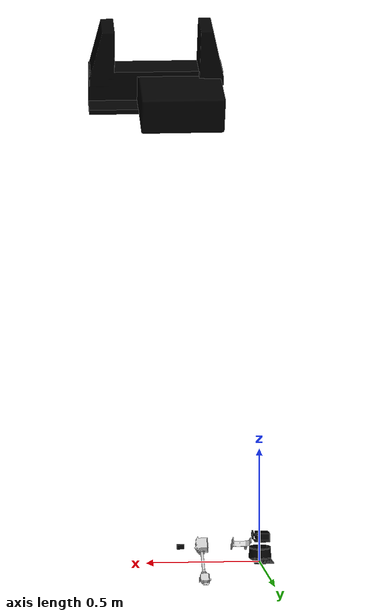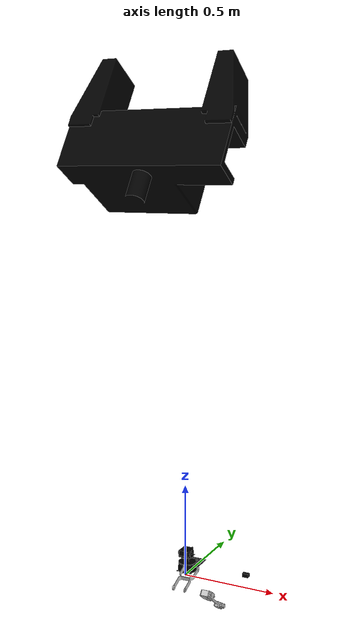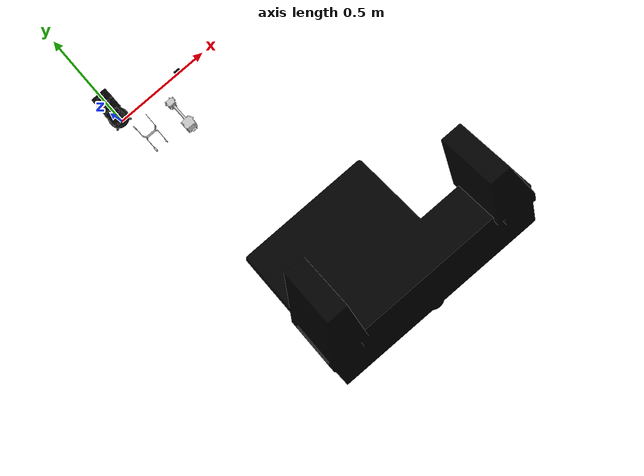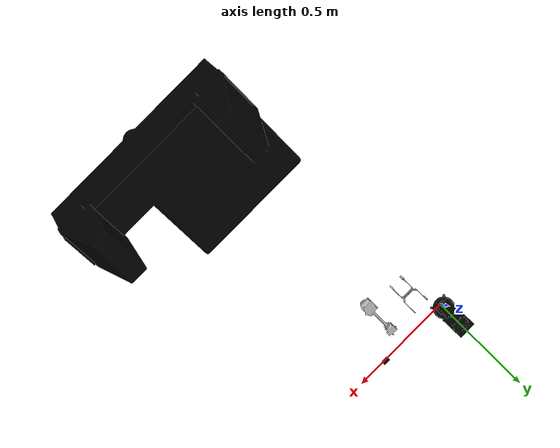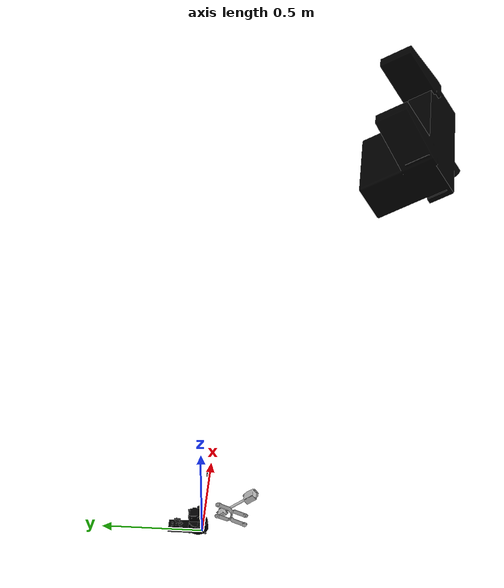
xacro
<?xml version="1.0" ?>
<robot name="lynxmotion_al5d" xmlns:xacro="http://ros.org/wiki/xacro">
  <xacro:include filename="$(find lynxmotion_al5d_support)/urdf/al5d_macro.xacro"/>
    <xacro:lynxmotion_al5d prefix=""/>
    <link name="world"/>
    <joint name="fixed" type="fixed">
      <parent link="world"/>
      <child link="base_link"/>
    </joint>
</robot>

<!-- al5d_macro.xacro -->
<robot xmlns:xacro="http://ros.org/wiki/xacro">

  <xacro:property name="M_PI" value="3.14159"/>

 <xacro:property  name="base_height" value="0.043" />
 <xacro:property  name="base_radius" value="0.048" />
 <xacro:property name="link1_height" value="0.006" />
 <xacro:property name="link1_radius" value="0.048" />
 <xacro:property  name="link2_offset" value="0.022" />
  <xacro:property name="link2_length" value="0.14605" />
  <xacro:property name="link3_length" value="0.187325" />
  <xacro:property  name="link4_length" value="0.032" />
 <xacro:property  name="gripper_offset" value="0.016" />

  <xacro:macro name="lynxmotion_al5d" params="prefix">
    <!-- attach -->

    <!-- links -->
    <link name="${prefix}base_link">
      <visual>
        <origin xyz="0 0 ${base_height/2}" rpy="0 0 0"/>
       <geometry>
					<mesh filename="package://lynxmotion_al5d_support/meshes/base_1.dae"/>
				</geometry>
        <material name="black">
          <color rgba="0 0 0 1"/>
        </material>
      </visual>
      <collision>
        <origin xyz="0 0 ${base_height/2}" rpy="0 0 0"/>
        <geometry>
          <cylinder length="${base_height}" radius="${link1_radius}"/>
        </geometry>
      </collision>
    </link>
    <link name="${prefix}link_1">
      <visual>
        <origin xyz="0 0 0" rpy="0 0 0"/>
       <geometry>
					<mesh filename="package://lynxmotion_al5d_support/meshes/link_11.dae"/>
				</geometry>
        <material name="black">
          <color rgba="0 0 0 1"/>
        </material>
      </visual>
      <collision>
        <origin xyz="0 0 0" rpy="0 0 0"/>
        <geometry>
           <cylinder length="${link1_height}" radius="${base_radius}"/>
        </geometry>
      </collision>
    </link>
    <link name="${prefix}link_2">
      <visual>
        <origin xyz="${link2_length/2} 0 0" rpy="0 0 0"/>
              <geometry>
					<mesh filename="package://lynxmotion_al5d_support/meshes/link_2.dae"/>
				</geometry>
        <material name="silver">
          <color rgba="0.8 0.8 0.8 1"/>
        </material>
      </visual>
      <collision>
        <origin xyz="${link2_length/2} 0 0" rpy="0 0 0"/>
        <geometry>
          <box size="${link2_length-0.02} 0.02 .02"/>
        </geometry>
      </collision>
    </link>
    <link name="${prefix}link_3">
      <visual>
        <origin xyz="${link3_length/2} 0 0" rpy="0 0 0"/>
       <geometry>
					<mesh filename="package://lynxmotion_al5d_support/meshes/link_3.dae"/>
				</geometry>
        <material name="silver">
          <color rgba="0.8 0.8 0.8 1"/>
        </material>
      </visual>
      <collision>
        <origin xyz="${link3_length/2} 0 0" rpy="0 0 0"/>
        <geometry>
          <box size="${link3_length} 0.02 0.02"/>
        </geometry>
      </collision>
    </link>
    <link name="${prefix}link_4">
      <visual>
        <origin xyz="${link4_length/2} 0 0" rpy="0 0 0"/>
        <geometry>
          <box size="${link4_length} 0.02 0.02"/>
        </geometry>
        <material name="black">
          <color rgba="0 0 0 1"/>
        </material>
      </visual>
      <collision>
        <origin xyz="${link4_length/2} 0 0" rpy="0 0 0"/>
        <geometry>
          <box size="${link4_length} 0.02 0.02"/>
        </geometry>
      </collision>
    </link>
    <link name="${prefix}gripper">
      <visual>
        <origin xyz="0 0 0" rpy="0 0 0"/>
              <geometry>
					<mesh filename="package://lynxmotion_al5d_support/meshes/gripper.dae"/>
				</geometry>
        <material name="black">
          <color rgba="0 0 0 1"/>
        </material>
      </visual>
      <collision>
        <origin xyz="0 0 0.025" rpy="0 0 0"/>
        <geometry>
          <box size="0.05 0.05 0.05"/>
        </geometry>
      </collision>
    </link>

    <!-- joints -->
    <joint name="${prefix}joint_1" type="revolute">
      <origin xyz="0 0 ${base_height + link1_height}" rpy="0 0 0"/>
      <parent link="${prefix}base_link"/>
      <child link="${prefix}link_1"/>
      <axis xyz="0 0 1"/>
      <limit lower="-${M_PI/2}" upper="${M_PI/2}" effort="0" velocity="3.67"/>
    </joint>
    <joint name="${prefix}joint_2" type="revolute">
      <origin xyz="0 0 ${link2_offset}" rpy="${M_PI/2} 0 0"/>
      <parent link="${prefix}link_1"/>
      <child link="${prefix}link_2"/>
      <axis xyz="0 0 1"/>
      <limit lower="-${M_PI/2}" upper="${M_PI/2}" effort="0" velocity="3.32"/>
    </joint>
    <joint name="${prefix}joint_3" type="revolute">
      <origin xyz="${link2_length} 0 0" rpy="0 0 0" />
      <parent link="${prefix}link_2"/>
      <child link="${prefix}link_3"/>
      <axis xyz="0 0 1"/>
      <limit lower="-${M_PI/2}" upper="${M_PI/2}" effort="0" velocity="3.67"/>
    </joint>
    <joint name="${prefix}joint_4" type="revolute">
      <origin xyz="${link3_length} 0 0" rpy="0 0 0"/>
      <parent link="${prefix}link_3"/>
      <child link="${prefix}link_4"/>
      <axis xyz="0 0 1"/>
      <limit lower="-${M_PI/2}" upper="${M_PI/2}" effort="0" velocity="6.98"/>
    </joint>
    <joint name="${prefix}gripper" type="fixed">
      <origin xyz="${link4_length + gripper_offset} 0 0" rpy="0 0 0"/>
      <parent link="${prefix}link_4"/>
      <child link="${prefix}gripper"/>
      <axis xyz="0 0 1"/>
      <limit lower="-${M_PI/2}" upper="${M_PI/2}" effort="0" velocity="6.98"/>
    </joint>
  </xacro:macro>
</robot>
